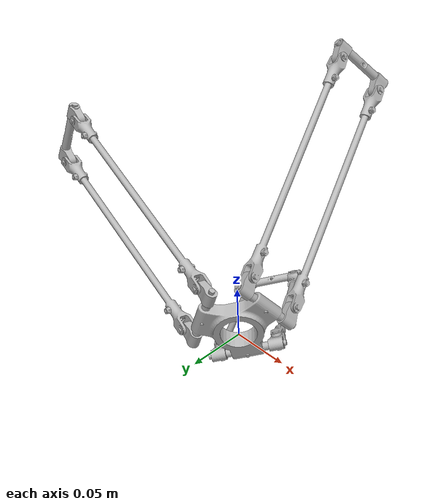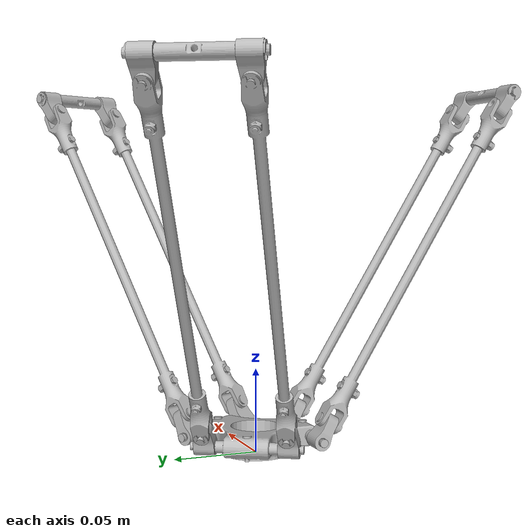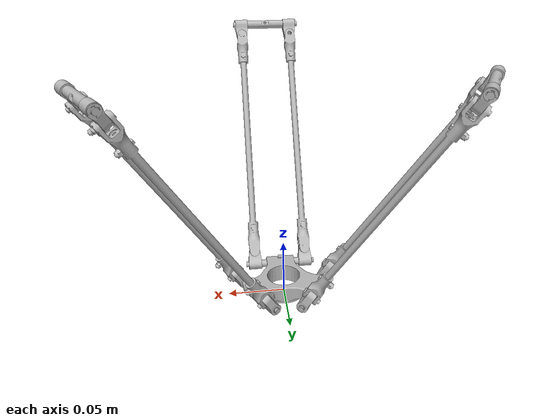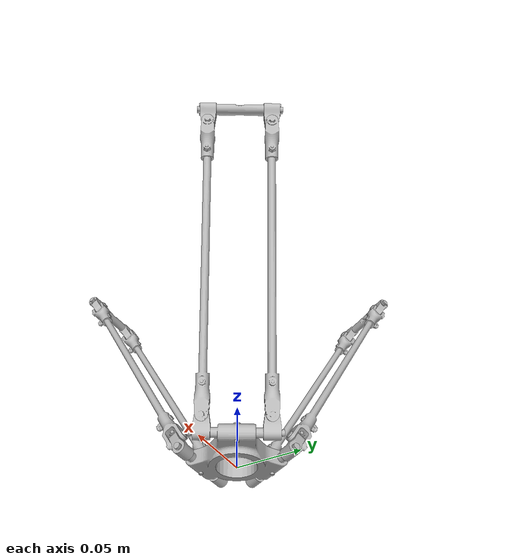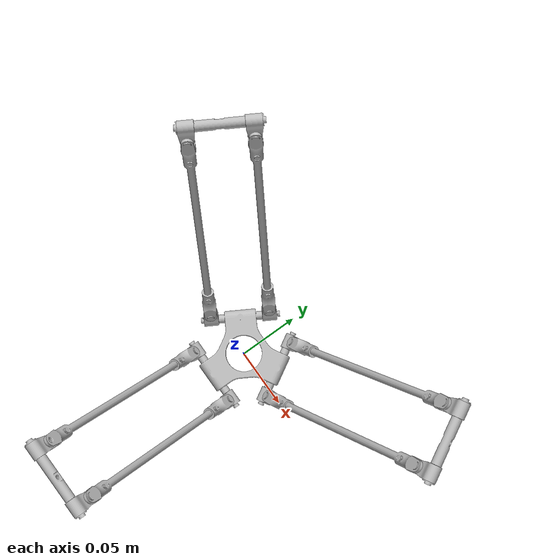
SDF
<sdf version='1.7'>
  <model name='DeltaManipulator_low'>
    <link name='low_base_link'>
      <inertial>
        <pose>0 -0 0.009282 0 -0 0</pose>
        <mass>0.0277053</mass>
        <inertia>
          <ixx>7.21837e-06</ixx>
          <ixy>8.45348e-15</ixy>
          <ixz>4.72158e-13</ixz>
          <iyy>7.21837e-06</iyy>
          <iyz>2.82195e-12</iyz>
          <izz>1.36261e-05</izz>
        </inertia>
      </inertial>
      <collision name='low_base_link_collision'>
        <pose>0 0 0 0 -0 0</pose>
        <geometry>
          <mesh>
            <scale>1 1 1</scale>
            <uri>model://DeltaManipulator_low/meshes/low_base_link.STL</uri>
          </mesh>
        </geometry>
      </collision>
      <visual name='low_base_link_visual'>
        <pose>0 0 0 0 -0 0</pose>
        <geometry>
          <mesh>
            <scale>1 1 1</scale>
            <uri>model://DeltaManipulator_low/meshes/low_base_link.STL</uri>
          </mesh>
        </geometry>
      </visual>
    </link>
    <joint name='low_base_link_joint_con131' type='revolute'>
      <pose relative_to='low_base_link'>-0.0324 -0.03 0.01 0 -0 0</pose>
      <parent>low_base_link</parent>
      <child>con131</child>
      <axis>
        <xyz>1 0 0</xyz>
        <limit>
          <effort>0</effort>
          <velocity>0</velocity>
          <lower>-1e+16</lower>
          <upper>1e+16</upper>
        </limit>
        <dynamics>
          <spring_reference>0</spring_reference>
          <spring_stiffness>0</spring_stiffness>
        </dynamics>
      </axis>
    </joint>
    <link name='con131'>
      <pose relative_to='low_base_link_joint_con131'>0 0 0 0 -0 0</pose>
      <inertial>
        <pose>0.0084 -0.002551 0.004143 0 -0 0</pose>
        <mass>0.00144663</mass>
        <inertia>
          <ixx>5.69218e-08</ixx>
          <ixy>2.42626e-21</ixy>
          <ixz>-4.12111e-21</ixz>
          <iyy>5.34923e-08</iyy>
          <iyz>1.74287e-08</iyz>
          <izz>3.59159e-08</izz>
        </inertia>
      </inertial>
      <collision name='con131_collision'>
        <pose>0 0 0 0 -0 0</pose>
        <geometry>
          <mesh>
            <scale>1 1 1</scale>
            <uri>model://DeltaManipulator_low/meshes/con131.STL</uri>
          </mesh>
        </geometry>
      </collision>
      <visual name='con131_visual'>
        <pose>0 0 0 0 -0 0</pose>
        <geometry>
          <mesh>
            <scale>1 1 1</scale>
            <uri>model://DeltaManipulator_low/meshes/con131.STL</uri>
          </mesh>
        </geometry>
      </visual>
    </link>
    <joint name='con111_joint_con121' type='revolute'>
      <pose relative_to='con131'>0.0084 -0.0137 0.005657 -1.5708 0.551882 -1.5708</pose>
      <parent>con131</parent>
      <child>con121</child>
      <axis>
        <xyz>-1 0 0</xyz>
        <limit>
          <lower>-1e+16</lower>
          <upper>1e+16</upper>
        </limit>
        <dynamics>
          <spring_reference>0</spring_reference>
          <spring_stiffness>0</spring_stiffness>
        </dynamics>
      </axis>
    </joint>
    <link name='con121'>
      <pose relative_to='con111_joint_con121'>0 0 0 0 -0 0</pose>
      <inertial>
        <pose>-0.008563 -0.105003 0 0 -0 0</pose>
        <mass>0.00783743</mass>
        <inertia>
          <ixx>1.33284e-05</ixx>
          <ixy>-9.92149e-13</ixy>
          <ixz>-1.33623e-13</ixz>
          <iyy>1.11815e-07</iyy>
          <iyz>1.13828e-13</iyz>
          <izz>1.33597e-05</izz>
        </inertia>
      </inertial>
      <collision name='con121_collision'>
        <pose>0 0 0 0 -0 0</pose>
        <geometry>
          <mesh>
            <scale>1 1 1</scale>
            <uri>model://DeltaManipulator_low/meshes/con121.STL</uri>
          </mesh>
        </geometry>
      </collision>
      <visual name='con121_visual'>
        <pose>0 0 0 0 -0 0</pose>
        <geometry>
          <mesh>
            <scale>1 1 1</scale>
            <uri>model://DeltaManipulator_low/meshes/con121.STL</uri>
          </mesh>
        </geometry>
      </visual>
    </link>
    <joint name='con121_joint_con111' type='revolute'>
      <pose relative_to='con121'>0 -0.216 0 0 -0 0</pose>
      <parent>con121</parent>
      <child>con111</child>
      <axis>
        <xyz>-1 0 0</xyz>
        <limit>
          <lower>-1e+16</lower>
          <upper>1e+16</upper>
        </limit>
        <dynamics>
          <spring_reference>0</spring_reference>
          <spring_stiffness>0</spring_stiffness>
        </dynamics>
      </axis>
    </joint>
    <link name='con111'>
      <pose relative_to='con121_joint_con111'>0 0 0 0 -0 0</pose>
      <inertial>
        <pose>-0.0087 -0.007134 0 0 -0 0</pose>
        <mass>0.00144663</mass>
        <inertia>
          <ixx>6.42231e-08</ixx>
          <ixy>-4.44378e-20</ixy>
          <ixz>3.96351e-23</ixz>
          <iyy>2.51851e-08</iyy>
          <iyz>-3.95041e-21</iyz>
          <izz>5.69218e-08</izz>
        </inertia>
      </inertial>
      <collision name='con111_collision'>
        <pose>0 0 0 0 -0 0</pose>
        <geometry>
          <mesh>
            <scale>1 1 1</scale>
            <uri>model://DeltaManipulator_low/meshes/con111.STL</uri>
          </mesh>
        </geometry>
      </collision>
      <visual name='con111_visual'>
        <pose>0 0 0 0 -0 0</pose>
        <geometry>
          <mesh>
            <scale>1 1 1</scale>
            <uri>model://DeltaManipulator_low/meshes/con111.STL</uri>
          </mesh>
        </geometry>
      </visual>
    </link>
    <joint name='con111_joint_con101' type='revolute'>
      <pose relative_to='con111'>-0.0087 -0.012 -0.0084 2.12268 -1.5708 0</pose>
      <parent>con111</parent>
      <child>con101</child>
      <axis>
        <xyz>-1 0 0</xyz>
        <limit>
          <lower>-1e+16</lower>
          <upper>1e+16</upper>
        </limit>
        <dynamics>
          <spring_reference>0</spring_reference>
          <spring_stiffness>0</spring_stiffness>
        </dynamics>
      </axis>
    </joint>
    <joint name='con112_joint_con101' type='revolute'>
      <pose relative_to='con112'>-0.0087 -0.012 -0.0084 2.12268 -1.5708 0</pose>
      <parent>con112</parent>
      <child>con101</child>
      <axis>
        <xyz>-1 0 0</xyz>
        <limit>
          <lower>-1e+16</lower>
          <upper>1e+16</upper>
        </limit>
        <dynamics>
          <spring_reference>0</spring_reference>
          <spring_stiffness>0</spring_stiffness>
        </dynamics>
      </axis>
    </joint>
    <link name='con101'>
      <pose relative_to='con111_joint_con101'>0 0 0 0 -0 0</pose>
      <inertial>
        <pose>0.0324 8e-06 1.6e-05 0 -0 0</pose>
        <mass>0.00233439</mass>
        <inertia>
          <ixx>1.61756e-08</ixx>
          <ixy>-7.61548e-21</ixy>
          <ixz>1.01196e-22</ixz>
          <iyy>5.60007e-07</iyy>
          <iyz>-7.07419e-11</iyz>
          <izz>5.59699e-07</izz>
        </inertia>
      </inertial>
      <collision name='con101_collision'>
        <pose>0 0 0 0 -0 0</pose>
        <geometry>
          <mesh>
            <scale>1 1 1</scale>
            <uri>model://DeltaManipulator_low/meshes/con101.STL</uri>
          </mesh>
        </geometry>
      </collision>
      <visual name='con101_visual'>
        <pose>0 0 0 0 -0 0</pose>
        <geometry>
          <mesh>
            <scale>1 1 1</scale>
            <uri>model://DeltaManipulator_low/meshes/con101.STL</uri>
          </mesh>
        </geometry>
      </visual>
    </link>
    <joint name='low_base_link_joint_con132' type='revolute'>
      <pose relative_to='low_base_link'>0.0324 -0.03 0.01 0 -0 0</pose>
      <parent>low_base_link</parent>
      <child>con132</child>
      <axis>
        <xyz>1 0 0</xyz>
        <limit>
          <effort>0</effort>
          <velocity>0</velocity>
          <lower>-1e+16</lower>
          <upper>1e+16</upper>
        </limit>
        <dynamics>
          <spring_reference>0</spring_reference>
          <spring_stiffness>0</spring_stiffness>
        </dynamics>
      </axis>
    </joint>
    <link name='con132'>
      <pose relative_to='low_base_link_joint_con132'>0 0 0 0 -0 0</pose>
      <inertial>
        <pose>-0.0084 -0.002551 0.004143 0 -0 0</pose>
        <mass>0.00144663</mass>
        <inertia>
          <ixx>5.69218e-08</ixx>
          <ixy>2.44273e-21</ixy>
          <ixz>-4.14507e-21</ixz>
          <iyy>5.34923e-08</iyy>
          <iyz>1.74287e-08</iyz>
          <izz>3.59159e-08</izz>
        </inertia>
      </inertial>
      <collision name='con132_collision'>
        <pose>0 0 0 0 -0 0</pose>
        <geometry>
          <mesh>
            <scale>1 1 1</scale>
            <uri>model://DeltaManipulator_low/meshes/con132.STL</uri>
          </mesh>
        </geometry>
      </collision>
      <visual name='con132_visual'>
        <pose>0 0 0 0 -0 0</pose>
        <geometry>
          <mesh>
            <scale>1 1 1</scale>
            <uri>model://DeltaManipulator_low/meshes/con132.STL</uri>
          </mesh>
        </geometry>
      </visual>
    </link>
    <joint name='con112_joint_con122' type='revolute'>
      <pose relative_to='con132'>-0.0084 -0.0137 0.005657 -1.5708 0.551882 -1.5708</pose>
      <parent>con132</parent>
      <child>con122</child>
      <axis>
        <xyz>-1 0 0</xyz>
        <limit>
          <lower>-1e+16</lower>
          <upper>1e+16</upper>
        </limit>
        <dynamics>
          <spring_reference>0</spring_reference>
          <spring_stiffness>0</spring_stiffness>
        </dynamics>
      </axis>
    </joint>
    <link name='con122'>
      <pose relative_to='con112_joint_con122'>0 0 0 0 -0 0</pose>
      <inertial>
        <pose>-0.008567 -0.107998 0 0 -0 0</pose>
        <mass>0.00805476</mass>
        <inertia>
          <ixx>1.33289e-05</ixx>
          <ixy>-9.92149e-13</ixy>
          <ixz>-1.33623e-13</ixz>
          <iyy>1.1727e-07</iyy>
          <iyz>1.13828e-13</iyz>
          <izz>1.33651e-05</izz>
        </inertia>
      </inertial>
      <collision name='con122_collision'>
        <pose>0 0 0 0 -0 0</pose>
        <geometry>
          <mesh>
            <scale>1 1 1</scale>
            <uri>model://DeltaManipulator_low/meshes/con122.STL</uri>
          </mesh>
        </geometry>
      </collision>
      <visual name='con122_visual'>
        <pose>0 0 0 0 -0 0</pose>
        <geometry>
          <mesh>
            <scale>1 1 1</scale>
            <uri>model://DeltaManipulator_low/meshes/con122.STL</uri>
          </mesh>
        </geometry>
      </visual>
    </link>
    <joint name='con122_joint_con112' type='revolute'>
      <pose relative_to='con122'>0 -0.216 0 0 -0 0</pose>
      <parent>con122</parent>
      <child>con112</child>
      <axis>
        <xyz>-1 0 0</xyz>
        <limit>
          <lower>-1e+16</lower>
          <upper>1e+16</upper>
        </limit>
        <dynamics>
          <spring_reference>0</spring_reference>
          <spring_stiffness>0</spring_stiffness>
        </dynamics>
      </axis>
    </joint>
    <link name='con112'>
      <pose relative_to='con122_joint_con112'>0 0 0 0 -0 0</pose>
      <inertial>
        <pose>-0.0087 -0.007134 0 0 -0 0</pose>
        <mass>0.00144663</mass>
        <inertia>
          <ixx>6.42231e-08</ixx>
          <ixy>-4.44709e-20</ixy>
          <ixz>4.25904e-23</ixz>
          <iyy>2.51851e-08</iyy>
          <iyz>-3.95245e-21</iyz>
          <izz>5.69218e-08</izz>
        </inertia>
      </inertial>
      <collision name='con112_collision'>
        <pose>0 0 0 0 -0 0</pose>
        <geometry>
          <mesh>
            <scale>1 1 1</scale>
            <uri>model://DeltaManipulator_low/meshes/con112.STL</uri>
          </mesh>
        </geometry>
      </collision>
      <visual name='con112_visual'>
        <pose>0 0 0 0 -0 0</pose>
        <geometry>
          <mesh>
            <scale>1 1 1</scale>
            <uri>model://DeltaManipulator_low/meshes/con112.STL</uri>
          </mesh>
        </geometry>
      </visual>
    </link>
    <joint name='low_base_link_joint_con231' type='revolute'>
      <pose relative_to='low_base_link'>0.042181 -0.013059 0.01 0 0 -1.0472</pose>
      <parent>low_base_link</parent>
      <child>con231</child>
      <axis>
        <xyz>-1 0 0</xyz>
        <limit>
          <effort>0</effort>
          <velocity>0</velocity>
          <lower>-1e+16</lower>
          <upper>1e+16</upper>
        </limit>
        <dynamics>
          <spring_reference>0</spring_reference>
          <spring_stiffness>0</spring_stiffness>
        </dynamics>
      </axis>
    </joint>
    <link name='con231'>
      <pose relative_to='low_base_link_joint_con231'>0 0 0 0 -0 0</pose>
      <inertial>
        <pose>-0.0084 0.002551 0.004143 0 -0 0</pose>
        <mass>0.00144663</mass>
        <inertia>
          <ixx>5.69218e-08</ixx>
          <ixy>7.6728e-19</ixy>
          <ixz>2.0404e-18</ixz>
          <iyy>5.34923e-08</iyy>
          <iyz>-1.74287e-08</iyz>
          <izz>3.59159e-08</izz>
        </inertia>
      </inertial>
      <collision name='con231_collision'>
        <pose>0 0 0 0 -0 0</pose>
        <geometry>
          <mesh>
            <scale>1 1 1</scale>
            <uri>model://DeltaManipulator_low/meshes/con231.STL</uri>
          </mesh>
        </geometry>
      </collision>
      <visual name='con231_visual'>
        <pose>0 0 0 0 -0 0</pose>
        <geometry>
          <mesh>
            <scale>1 1 1</scale>
            <uri>model://DeltaManipulator_low/meshes/con231.STL</uri>
          </mesh>
        </geometry>
      </visual>
    </link>
    <joint name='con211_joint_con221' type='revolute'>
      <pose relative_to='con231'>-0.0084 0.0137 0.005657 0.293931 0.551882 1.5708</pose>
      <parent>con231</parent>
      <child>con221</child>
      <axis>
        <xyz>-1 0 0</xyz>
        <limit>
          <lower>-1e+16</lower>
          <upper>1e+16</upper>
        </limit>
        <dynamics>
          <spring_reference>0</spring_reference>
          <spring_stiffness>0</spring_stiffness>
        </dynamics>
      </axis>
    </joint>
    <link name='con221'>
      <pose relative_to='con211_joint_con221'>0 0 0 0 -0 0</pose>
      <inertial>
        <pose>-0.008567 0.031289 0.103366 0 -0 0</pose>
        <mass>0.00805476</mass>
        <inertia>
          <ixx>1.33289e-05</ixx>
          <ixy>1.60266e-13</ixy>
          <ixz>9.898e-13</ixz>
          <iyy>1.22531e-05</iyy>
          <iyz>-3.67352e-06</iyz>
          <izz>1.22924e-06</izz>
        </inertia>
      </inertial>
      <collision name='con221_collision'>
        <pose>0 0 0 0 -0 0</pose>
        <geometry>
          <mesh>
            <scale>1 1 1</scale>
            <uri>model://DeltaManipulator_low/meshes/con221.STL</uri>
          </mesh>
        </geometry>
      </collision>
      <visual name='con221_visual'>
        <pose>0 0 0 0 -0 0</pose>
        <geometry>
          <mesh>
            <scale>1 1 1</scale>
            <uri>model://DeltaManipulator_low/meshes/con221.STL</uri>
          </mesh>
        </geometry>
      </visual>
    </link>
    <joint name='con221_joint_con211' type='revolute'>
      <pose relative_to='con221'>0 0.062579 0.206736 0 -0 0</pose>
      <parent>con221</parent>
      <child>con211</child>
      <axis>
        <xyz>-1 0 0</xyz>
        <limit>
          <lower>-1e+16</lower>
          <upper>1e+16</upper>
        </limit>
        <dynamics>
          <spring_reference>0</spring_reference>
          <spring_stiffness>0</spring_stiffness>
        </dynamics>
      </axis>
    </joint>
    <link name='con211'>
      <pose relative_to='con221_joint_con211'>0 0 0 0 -0 0</pose>
      <inertial>
        <pose>-0.0087 0.002067 0.006828 0 -0 0</pose>
        <mass>0.00144663</mass>
        <inertia>
          <ixx>6.42231e-08</ixx>
          <ixy>8.373e-19</ixy>
          <ixz>1.32407e-18</ixz>
          <iyy>5.4258e-08</iyy>
          <iyz>-8.80033e-09</iyz>
          <izz>2.7849e-08</izz>
        </inertia>
      </inertial>
      <collision name='con211_collision'>
        <pose>0 0 0 0 -0 0</pose>
        <geometry>
          <mesh>
            <scale>1 1 1</scale>
            <uri>model://DeltaManipulator_low/meshes/con211.STL</uri>
          </mesh>
        </geometry>
      </collision>
      <visual name='con211_visual'>
        <pose>0 0 0 0 -0 0</pose>
        <geometry>
          <mesh>
            <scale>1 1 1</scale>
            <uri>model://DeltaManipulator_low/meshes/con211.STL</uri>
          </mesh>
        </geometry>
      </visual>
    </link>
    <joint name='con211_joint_con201' type='revolute'>
      <pose relative_to='con211'>-0.0087 -0.004563 0.013919 2.58971 0.293931 1.5708</pose>
      <parent>con211</parent>
      <child>con201</child>
      <axis>
        <xyz>-1 0 0</xyz>
        <limit>
          <lower>-1e+16</lower>
          <upper>1e+16</upper>
        </limit>
        <dynamics>
          <spring_reference>0</spring_reference>
          <spring_stiffness>0</spring_stiffness>
        </dynamics>
      </axis>
    </joint>
    <joint name='con212_joint_con201' type='revolute'>
      <pose relative_to='con212'>-0.0087 -0.004563 0.013919 2.58971 0.293931 1.5708</pose>
      <parent>con212</parent>
      <child>con201</child>
      <axis>
        <xyz>-1 0 0</xyz>
        <limit>
          <lower>-1e+16</lower>
          <upper>1e+16</upper>
        </limit>
        <dynamics>
          <spring_reference>0</spring_reference>
          <spring_stiffness>0</spring_stiffness>
        </dynamics>
      </axis>
    </joint>
    <link name='con201'>
      <pose relative_to='con211_joint_con201'>0 0 0 0 -0 0</pose>
      <inertial>
        <pose>0.0324 -8e-06 -1.6e-05 0 -0 0</pose>
        <mass>0.00233439</mass>
        <inertia>
          <ixx>1.61756e-08</ixx>
          <ixy>-7.07191e-23</ixy>
          <ixz>-2.58982e-22</ixz>
          <iyy>5.60007e-07</iyy>
          <iyz>-7.07419e-11</iyz>
          <izz>5.59699e-07</izz>
        </inertia>
      </inertial>
      <collision name='con201_collision'>
        <pose>0 0 0 0 -0 0</pose>
        <geometry>
          <mesh>
            <scale>1 1 1</scale>
            <uri>model://DeltaManipulator_low/meshes/con201.STL</uri>
          </mesh>
        </geometry>
      </collision>
      <visual name='con201_visual'>
        <pose>0 0 0 0 -0 0</pose>
        <geometry>
          <mesh>
            <scale>1 1 1</scale>
            <uri>model://DeltaManipulator_low/meshes/con201.STL</uri>
          </mesh>
        </geometry>
      </visual>
    </link>
    <joint name='low_base_link_joint_con232' type='revolute'>
      <pose relative_to='low_base_link'>0.009781 0.043059 0.01 -3.14159 -0 2.0944</pose>
      <parent>low_base_link</parent>
      <child>con232</child>
      <axis>
        <xyz>1 0 0</xyz>
        <limit>
          <effort>0</effort>
          <velocity>0</velocity>
          <lower>-1e+16</lower>
          <upper>1e+16</upper>
        </limit>
        <dynamics>
          <spring_reference>0</spring_reference>
          <spring_stiffness>0</spring_stiffness>
        </dynamics>
      </axis>
    </joint>
    <link name='con232'>
      <pose relative_to='low_base_link_joint_con232'>0 0 0 0 -0 0</pose>
      <inertial>
        <pose>-0.0084 0.002551 -0.004143 0 -0 0</pose>
        <mass>0.00144663</mass>
        <inertia>
          <ixx>5.69218e-08</ixx>
          <ixy>-7.67975e-19</ixy>
          <ixz>2.04391e-18</ixz>
          <iyy>5.34923e-08</iyy>
          <iyz>1.74287e-08</iyz>
          <izz>3.59159e-08</izz>
        </inertia>
      </inertial>
      <collision name='con232_collision'>
        <pose>0 0 0 0 -0 0</pose>
        <geometry>
          <mesh>
            <scale>1 1 1</scale>
            <uri>model://DeltaManipulator_low/meshes/con232.STL</uri>
          </mesh>
        </geometry>
      </collision>
      <visual name='con232_visual'>
        <pose>0 0 0 0 -0 0</pose>
        <geometry>
          <mesh>
            <scale>1 1 1</scale>
            <uri>model://DeltaManipulator_low/meshes/con232.STL</uri>
          </mesh>
        </geometry>
      </visual>
    </link>
    <joint name='con212_joint_con222' type='revolute'>
      <pose relative_to='con232'>-0.0084 0.0137 -0.005657 -2.84766 -0.551882 1.5708</pose>
      <parent>con232</parent>
      <child>con222</child>
      <axis>
        <xyz>-1 0 0</xyz>
        <limit>
          <lower>-1e+16</lower>
          <upper>1e+16</upper>
        </limit>
        <dynamics>
          <spring_reference>0</spring_reference>
          <spring_stiffness>0</spring_stiffness>
        </dynamics>
      </axis>
    </joint>
    <link name='con222'>
      <pose relative_to='con212_joint_con222'>0 0 0 0 -0 0</pose>
      <inertial>
        <pose>-0.008567 0.031289 0.103366 0 -0 0</pose>
        <mass>0.00805476</mass>
        <inertia>
          <ixx>1.33289e-05</ixx>
          <ixy>1.60266e-13</ixy>
          <ixz>9.898e-13</ixz>
          <iyy>1.22531e-05</iyy>
          <iyz>-3.67352e-06</iyz>
          <izz>1.22924e-06</izz>
        </inertia>
      </inertial>
      <collision name='con222_collision'>
        <pose>0 0 0 0 -0 0</pose>
        <geometry>
          <mesh>
            <scale>1 1 1</scale>
            <uri>model://DeltaManipulator_low/meshes/con222.STL</uri>
          </mesh>
        </geometry>
      </collision>
      <visual name='con222_visual'>
        <pose>0 0 0 0 -0 0</pose>
        <geometry>
          <mesh>
            <scale>1 1 1</scale>
            <uri>model://DeltaManipulator_low/meshes/con222.STL</uri>
          </mesh>
        </geometry>
      </visual>
    </link>
    <joint name='con222_joint_con212' type='revolute'>
      <pose relative_to='con222'>0 0.062579 0.206736 0 -0 0</pose>
      <parent>con222</parent>
      <child>con212</child>
      <axis>
        <xyz>-1 0 0</xyz>
        <limit>
          <lower>-1e+16</lower>
          <upper>1e+16</upper>
        </limit>
        <dynamics>
          <spring_reference>0</spring_reference>
          <spring_stiffness>0</spring_stiffness>
        </dynamics>
      </axis>
    </joint>
    <link name='con212'>
      <pose relative_to='con222_joint_con212'>0 0 0 0 -0 0</pose>
      <inertial>
        <pose>-0.0087 0.002067 0.006828 0 -0 0</pose>
        <mass>0.00144663</mass>
        <inertia>
          <ixx>6.42231e-08</ixx>
          <ixy>8.37302e-19</ixy>
          <ixz>1.32411e-18</ixz>
          <iyy>5.4258e-08</iyy>
          <iyz>-8.80033e-09</iyz>
          <izz>2.7849e-08</izz>
        </inertia>
      </inertial>
      <collision name='con212_collision'>
        <pose>0 0 0 0 -0 0</pose>
        <geometry>
          <mesh>
            <scale>1 1 1</scale>
            <uri>model://DeltaManipulator_low/meshes/con212.STL</uri>
          </mesh>
        </geometry>
      </collision>
      <visual name='con212_visual'>
        <pose>0 0 0 0 -0 0</pose>
        <geometry>
          <mesh>
            <scale>1 1 1</scale>
            <uri>model://DeltaManipulator_low/meshes/con212.STL</uri>
          </mesh>
        </geometry>
      </visual>
    </link>
    <joint name='low_base_link_joint_con331' type='revolute'>
      <pose relative_to='low_base_link'>-0.009781 0.043059 0.01 3.14159 0 -2.0944</pose>
      <parent>low_base_link</parent>
      <child>con331</child>
      <axis>
        <xyz>1 0 0</xyz>
        <limit>
          <effort>0</effort>
          <velocity>0</velocity>
          <lower>-1e+16</lower>
          <upper>1e+16</upper>
        </limit>
        <dynamics>
          <spring_reference>0</spring_reference>
          <spring_stiffness>0</spring_stiffness>
        </dynamics>
      </axis>
    </joint>
    <link name='con331'>
      <pose relative_to='low_base_link_joint_con331'>0 0 0 0 -0 0</pose>
      <inertial>
        <pose>0.0084 0.002551 -0.004143 0 -0 0</pose>
        <mass>0.00144663</mass>
        <inertia>
          <ixx>5.69218e-08</ixx>
          <ixy>7.6296e-19</ixy>
          <ixz>-2.03602e-18</ixz>
          <iyy>5.34923e-08</iyy>
          <iyz>1.74287e-08</iyz>
          <izz>3.59159e-08</izz>
        </inertia>
      </inertial>
      <collision name='con331_collision'>
        <pose>0 0 0 0 -0 0</pose>
        <geometry>
          <mesh>
            <scale>1 1 1</scale>
            <uri>model://DeltaManipulator_low/meshes/con331.STL</uri>
          </mesh>
        </geometry>
      </collision>
      <visual name='con331_visual'>
        <pose>0 0 0 0 -0 0</pose>
        <geometry>
          <mesh>
            <scale>1 1 1</scale>
            <uri>model://DeltaManipulator_low/meshes/con331.STL</uri>
          </mesh>
        </geometry>
      </visual>
    </link>
    <joint name='con311_joint_con321' type='revolute'>
      <pose relative_to='con331'>0.0084 0.0137 -0.005657 -0.293931 -0.551882 1.5708</pose>
      <parent>con331</parent>
      <child>con321</child>
      <axis>
        <xyz>-1 0 0</xyz>
        <limit>
          <lower>-1e+16</lower>
          <upper>1e+16</upper>
        </limit>
        <dynamics>
          <spring_reference>0</spring_reference>
          <spring_stiffness>0</spring_stiffness>
        </dynamics>
      </axis>
    </joint>
    <link name='con321'>
      <pose relative_to='con311_joint_con321'>0 0 0 0 -0 0</pose>
      <inertial>
        <pose>-0.008567 0.031289 -0.103366 0 -0 0</pose>
        <mass>0.00805476</mass>
        <inertia>
          <ixx>1.33289e-05</ixx>
          <ixy>4.16032e-13</ixy>
          <ixz>-9.12342e-13</ixz>
          <iyy>1.22531e-05</iyy>
          <iyz>3.67352e-06</iyz>
          <izz>1.22924e-06</izz>
        </inertia>
      </inertial>
      <collision name='con321_collision'>
        <pose>0 0 0 0 -0 0</pose>
        <geometry>
          <mesh>
            <scale>1 1 1</scale>
            <uri>model://DeltaManipulator_low/meshes/con321.STL</uri>
          </mesh>
        </geometry>
      </collision>
      <visual name='con321_visual'>
        <pose>0 0 0 0 -0 0</pose>
        <geometry>
          <mesh>
            <scale>1 1 1</scale>
            <uri>model://DeltaManipulator_low/meshes/con321.STL</uri>
          </mesh>
        </geometry>
      </visual>
    </link>
    <joint name='con321_joint_311' type='revolute'>
      <pose relative_to='con321'>0 0.062579 -0.206736 0 -0 0</pose>
      <parent>con321</parent>
      <child>con311</child>
      <axis>
        <xyz>-1 0 0</xyz>
        <limit>
          <lower>-1e+16</lower>
          <upper>1e+16</upper>
        </limit>
        <dynamics>
          <spring_reference>0</spring_reference>
          <spring_stiffness>0</spring_stiffness>
        </dynamics>
      </axis>
    </joint>
    <link name='con311'>
      <pose relative_to='con321_joint_311'>0 0 0 0 -0 0</pose>
      <inertial>
        <pose>-0.0087 0.002067 -0.006828 0 -0 0</pose>
        <mass>0.00144663</mass>
        <inertia>
          <ixx>6.42231e-08</ixx>
          <ixy>8.37141e-19</ixy>
          <ixz>-1.32412e-18</ixz>
          <iyy>5.4258e-08</iyy>
          <iyz>8.80033e-09</iyz>
          <izz>2.7849e-08</izz>
        </inertia>
      </inertial>
      <collision name='con311_collision'>
        <pose>0 0 0 0 -0 0</pose>
        <geometry>
          <mesh>
            <scale>1 1 1</scale>
            <uri>model://DeltaManipulator_low/meshes/con311.STL</uri>
          </mesh>
        </geometry>
      </collision>
      <visual name='con311_visual'>
        <pose>0 0 0 0 -0 0</pose>
        <geometry>
          <mesh>
            <scale>1 1 1</scale>
            <uri>model://DeltaManipulator_low/meshes/con311.STL</uri>
          </mesh>
        </geometry>
      </visual>
    </link>
    <joint name='con311_joint_con301' type='revolute'>
      <pose relative_to='con311'>-0.0087 0.011516 -0.009052 -0.551882 0.293931 -1.5708</pose>
      <parent>con311</parent>
      <child>con301</child>
      <axis>
        <xyz>-1 0 0</xyz>
        <limit>
          <lower>-1e+16</lower>
          <upper>1e+16</upper>
        </limit>
        <dynamics>
          <spring_reference>0</spring_reference>
          <spring_stiffness>0</spring_stiffness>
        </dynamics>
      </axis>
    </joint>
    <joint name='con312_joint_con301' type='revolute'>
      <pose relative_to='con312'>-0.0087 0.011516 -0.009052 -0.551882 0.293931 -1.5708</pose>
      <parent>con312</parent>
      <child>con301</child>
      <axis>
        <xyz>-1 0 0</xyz>
        <limit>
          <lower>-1e+16</lower>
          <upper>1e+16</upper>
        </limit>
        <dynamics>
          <spring_reference>0</spring_reference>
          <spring_stiffness>0</spring_stiffness>
        </dynamics>
      </axis>
    </joint>
    <link name='con301'>
      <pose relative_to='con311_joint_con301'>0 0 0 0 -0 0</pose>
      <inertial>
        <pose>0.0324 -8e-06 -1.6e-05 0 -0 0</pose>
        <mass>0.00233439</mass>
        <inertia>
          <ixx>1.61756e-08</ixx>
          <ixy>-2.40713e-22</ixy>
          <ixz>-1.20818e-23</ixz>
          <iyy>5.60007e-07</iyy>
          <iyz>-7.07419e-11</iyz>
          <izz>5.59699e-07</izz>
        </inertia>
      </inertial>
      <collision name='con301_collision'>
        <pose>0 0 0 0 -0 0</pose>
        <geometry>
          <mesh>
            <scale>1 1 1</scale>
            <uri>model://DeltaManipulator_low/meshes/con301.STL</uri>
          </mesh>
        </geometry>
      </collision>
      <visual name='con301_visual'>
        <pose>0 0 0 0 -0 0</pose>
        <geometry>
          <mesh>
            <scale>1 1 1</scale>
            <uri>model://DeltaManipulator_low/meshes/con301.STL</uri>
          </mesh>
        </geometry>
      </visual>
    </link>
    <joint name='low_base_link_joint_con332' type='revolute'>
      <pose relative_to='low_base_link'>-0.042181 -0.013059 0.01 0 -0 1.0472</pose>
      <parent>low_base_link</parent>
      <child>con332</child>
      <axis>
        <xyz>-1 0 0</xyz>
        <limit>
          <effort>0</effort>
          <velocity>0</velocity>
          <lower>-1e+16</lower>
          <upper>1e+16</upper>
        </limit>
        <dynamics>
          <spring_reference>0</spring_reference>
          <spring_stiffness>0</spring_stiffness>
        </dynamics>
      </axis>
    </joint>
    <link name='con332'>
      <pose relative_to='low_base_link_joint_con332'>0 0 0 0 -0 0</pose>
      <inertial>
        <pose>0.0084 0.002551 0.004143 0 -0 0</pose>
        <mass>0.00144663</mass>
        <inertia>
          <ixx>5.69218e-08</ixx>
          <ixy>-7.62946e-19</ixy>
          <ixz>-2.03605e-18</ixz>
          <iyy>5.34923e-08</iyy>
          <iyz>-1.74287e-08</iyz>
          <izz>3.59159e-08</izz>
        </inertia>
      </inertial>
      <collision name='con332_collision'>
        <pose>0 0 0 0 -0 0</pose>
        <geometry>
          <mesh>
            <scale>1 1 1</scale>
            <uri>model://DeltaManipulator_low/meshes/con332.STL</uri>
          </mesh>
        </geometry>
      </collision>
      <visual name='con332_visual'>
        <pose>0 0 0 0 -0 0</pose>
        <geometry>
          <mesh>
            <scale>1 1 1</scale>
            <uri>model://DeltaManipulator_low/meshes/con332.STL</uri>
          </mesh>
        </geometry>
      </visual>
    </link>
    <joint name='con312_joint_con322' type='revolute'>
      <pose relative_to='con332'>0.0084 0.0137 0.005657 2.84766 0.551882 1.5708</pose>
      <parent>con332</parent>
      <child>con322</child>
      <axis>
        <xyz>-1 0 0</xyz>
        <limit>
          <lower>-1e+16</lower>
          <upper>1e+16</upper>
        </limit>
        <dynamics>
          <spring_reference>0</spring_reference>
          <spring_stiffness>0</spring_stiffness>
        </dynamics>
      </axis>
    </joint>
    <link name='con322'>
      <pose relative_to='con312_joint_con322'>0 0 0 0 -0 0</pose>
      <inertial>
        <pose>-0.008567 0.031289 -0.103366 0 -0 0</pose>
        <mass>0.00805476</mass>
        <inertia>
          <ixx>1.33289e-05</ixx>
          <ixy>4.16032e-13</ixy>
          <ixz>-9.12342e-13</ixz>
          <iyy>1.22531e-05</iyy>
          <iyz>3.67352e-06</iyz>
          <izz>1.22924e-06</izz>
        </inertia>
      </inertial>
      <collision name='con322_collision'>
        <pose>0 0 0 0 -0 0</pose>
        <geometry>
          <mesh>
            <scale>1 1 1</scale>
            <uri>model://DeltaManipulator_low/meshes/con322.STL</uri>
          </mesh>
        </geometry>
      </collision>
      <visual name='con322_visual'>
        <pose>0 0 0 0 -0 0</pose>
        <geometry>
          <mesh>
            <scale>1 1 1</scale>
            <uri>model://DeltaManipulator_low/meshes/con322.STL</uri>
          </mesh>
        </geometry>
      </visual>
    </link>
    <joint name='con322_joint_con312' type='revolute'>
      <pose relative_to='con322'>0 0.062579 -0.206736 0 -0 0</pose>
      <parent>con322</parent>
      <child>con312</child>
      <axis>
        <xyz>-1 0 0</xyz>
        <limit>
          <lower>-1e+16</lower>
          <upper>1e+16</upper>
        </limit>
        <dynamics>
          <spring_reference>0</spring_reference>
          <spring_stiffness>0</spring_stiffness>
        </dynamics>
      </axis>
    </joint>
    <link name='con312'>
      <pose relative_to='con322_joint_con312'>0 0 0 0 -0 0</pose>
      <inertial>
        <pose>-0.0087 0.002067 -0.006828 0 -0 0</pose>
        <mass>0.00144663</mass>
        <inertia>
          <ixx>6.42231e-08</ixx>
          <ixy>8.37121e-19</ixy>
          <ixz>-1.32414e-18</ixz>
          <iyy>5.4258e-08</iyy>
          <iyz>8.80033e-09</iyz>
          <izz>2.7849e-08</izz>
        </inertia>
      </inertial>
      <collision name='con312_collision'>
        <pose>0 0 0 0 -0 0</pose>
        <geometry>
          <mesh>
            <scale>1 1 1</scale>
            <uri>model://DeltaManipulator_low/meshes/con312.STL</uri>
          </mesh>
        </geometry>
      </collision>
      <visual name='con312_visual'>
        <pose>0 0 0 0 -0 0</pose>
        <geometry>
          <mesh>
            <scale>1 1 1</scale>
            <uri>model://DeltaManipulator_low/meshes/con312.STL</uri>
          </mesh>
        </geometry>
      </visual>
    </link>

  </model>
</sdf>
